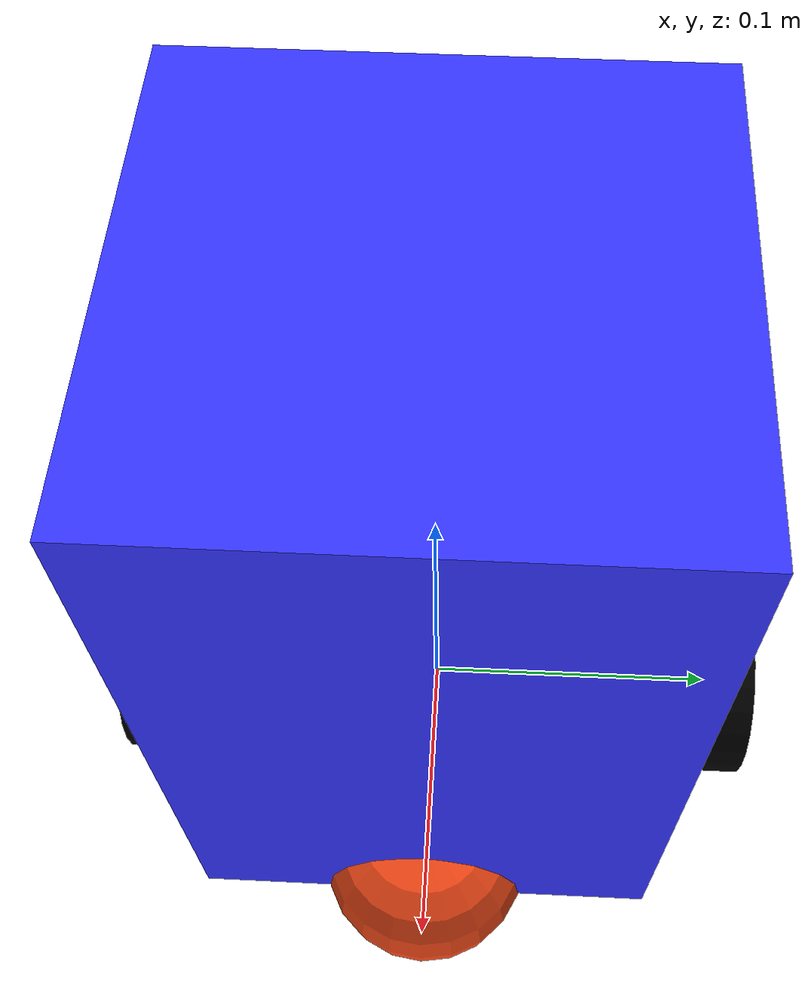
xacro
<?xml version="1.0"?>
<robot xmlns:xacro="http://www.ros.org/wiki/xacro" >

    <material name="white">
        <color rgba="1 1 1 1" />
    </material>

    <material name="orange">
        <color rgba="1 0.3 0.1 1" />
    </material>

    <material name="blue">
        <color rgba="0.2 0.2 1 1" />
    </material>

    <material name="black">
        <color rgba="0 0 0 1" />
    </material>

    <link name="base_link"></link>

    <joint name="body_joint" type="fixed">
        <parent link="base_link"/>
        <child link="body"/>
        <origin xyz="-0.065 0 0"/>
    </joint>

    <link name="body">
        <visual>
            <origin xyz = "0.075 0 0.11"/>
            <geometry>
                <box size="0.15 0.15 0.22"/>
            </geometry>
            <material name="blue"/>
        </visual>
    </link>

    <joint name="left_wheel_joint" type="continuous">
        <parent link="base_link"/>
        <child link="left_wheel"/>
        <origin xyz="0 0.1 0" rpy="-1.57 0 0"/>
        <axis xyz="0 0 1"/>
    </joint>

    <link name="left_wheel">
        <visual>
            <geometry>
                <cylinder radius="0.034" length="0.025"/>
            </geometry>
            <material name="black"/>
        </visual>
    </link>

    <joint name="right_wheel_joint" type="continuous">
        <parent link="base_link"/>
        <child link="right_wheel"/>
        <origin xyz="0 -0.1 0" rpy="1.57 0 0"/>
        <axis xyz="0 0 -1"/>
    </joint>

    <link name="right_wheel">
        <visual>
            <geometry>
                <cylinder radius="0.034" length="0.025"/>
            </geometry>
            <material name="black"/>
        </visual>
    </link>

    <joint name="castor_joint" type="fixed">
        <parent link="body"/>
        <child link="castor_wheel"/>
        <origin xyz="0.14 0 0"/>
    </joint>

    <link name="castor_wheel">
        <visual>
            <geometry>
                <sphere radius = "0.034"/>
            </geometry>
            <material name="orange"/>
        </visual>
    </link>

</robot>
